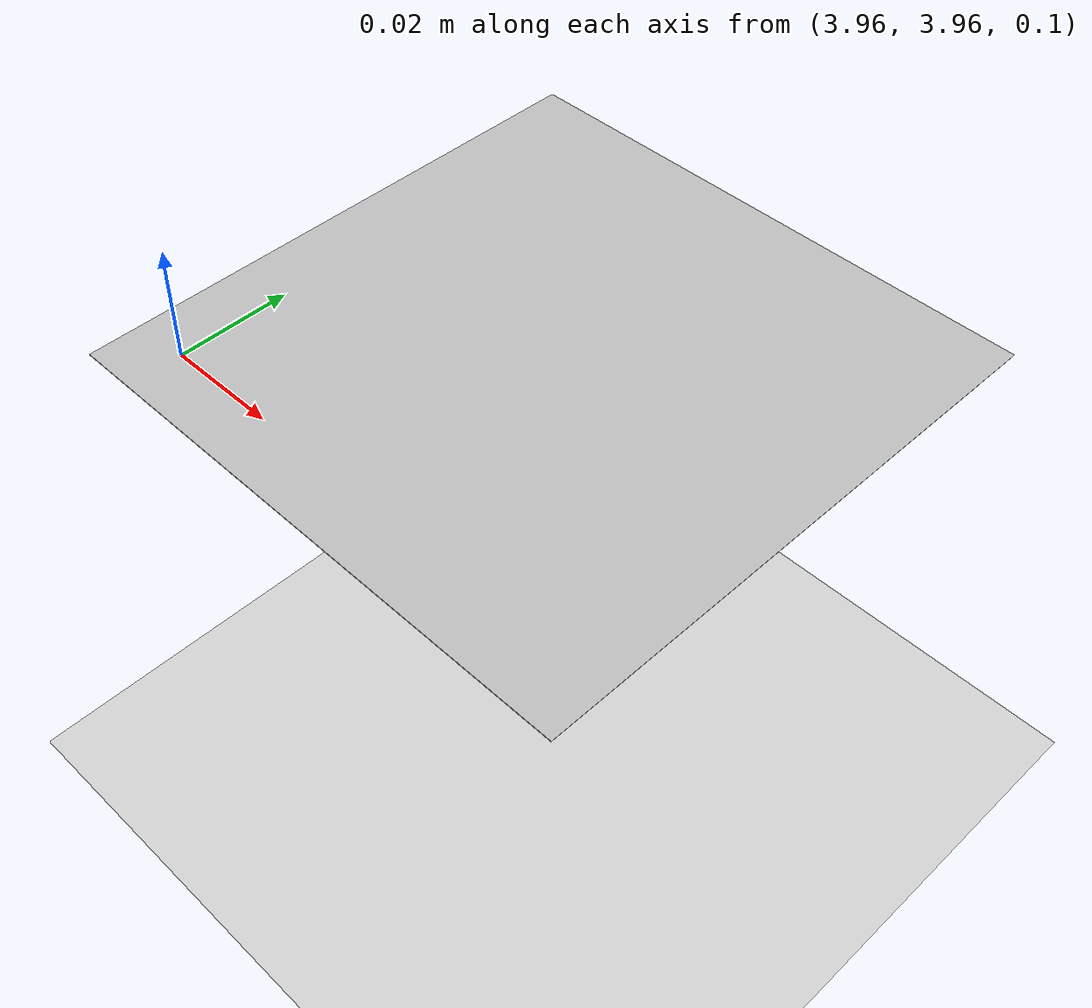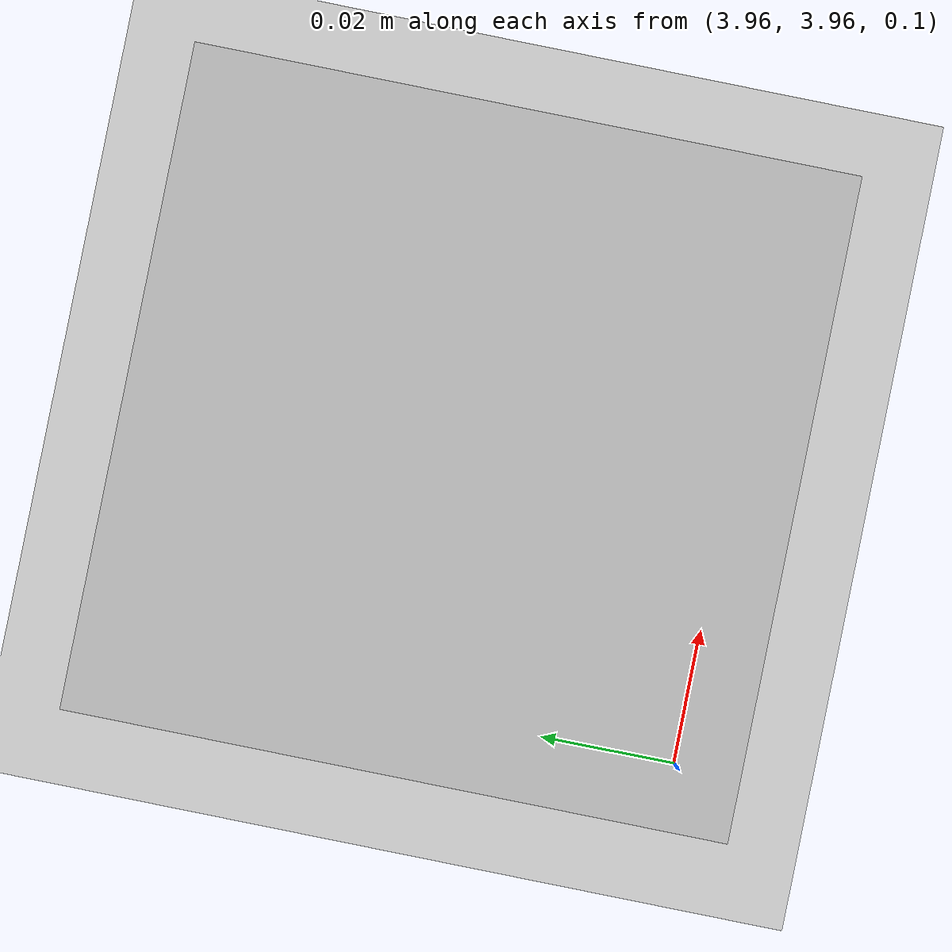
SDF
<?xml version="1.0" ?>
<sdf version="1.6">
  <world name="default">
    <!-- A global light source -->
    <include>
      <uri>model://sun</uri>
    </include>
    <!-- A ground plane -->
    <include>
      <uri>model://ground_plane</uri>
    </include>
    <!-- Add aruco marker -->
    <model name="aruco_marker">
      <include>
      <uri>model://aruco_marker</uri>
      <pose>4 4 0.1 0 0 0</pose>
      </include>
    </model>
  </world>
</sdf>

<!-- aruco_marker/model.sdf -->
<sdf version="1.4"> <model name="aruco_marker">   <static>true</static>
    <link name="link">
      <collision name="collision">
        <geometry>
          <plane>
            <normal>0 0 1</normal>
            <size>0.1 0.1</size>
          </plane>
        </geometry>
        <surface>
          <friction>
            <ode>
              <mu>100</mu>
              <mu2>50</mu2>
            </ode>
          </friction>
        </surface>
      </collision>
      <visual name="visual">
        <cast_shadows>false</cast_shadows>
        <geometry>
          <plane>
            <normal>0 0 1</normal>
            <size>0.1 0.1</size>    </plane>    <mesh>
        <uri>model://aruco_marker/materials/textures/aruco_marker.dae</uri>
          </mesh>
        </geometry>
        <material>
          <script>
            <uri>model://aruco_marker/materials/scripts/</uri>
            <uri>model://aruco_marker/materials/textures/</uri>
            <name>ArucoMarker/Image</name>
          </script>
        </material>
      </visual>
    </link>   </model> </sdf>
